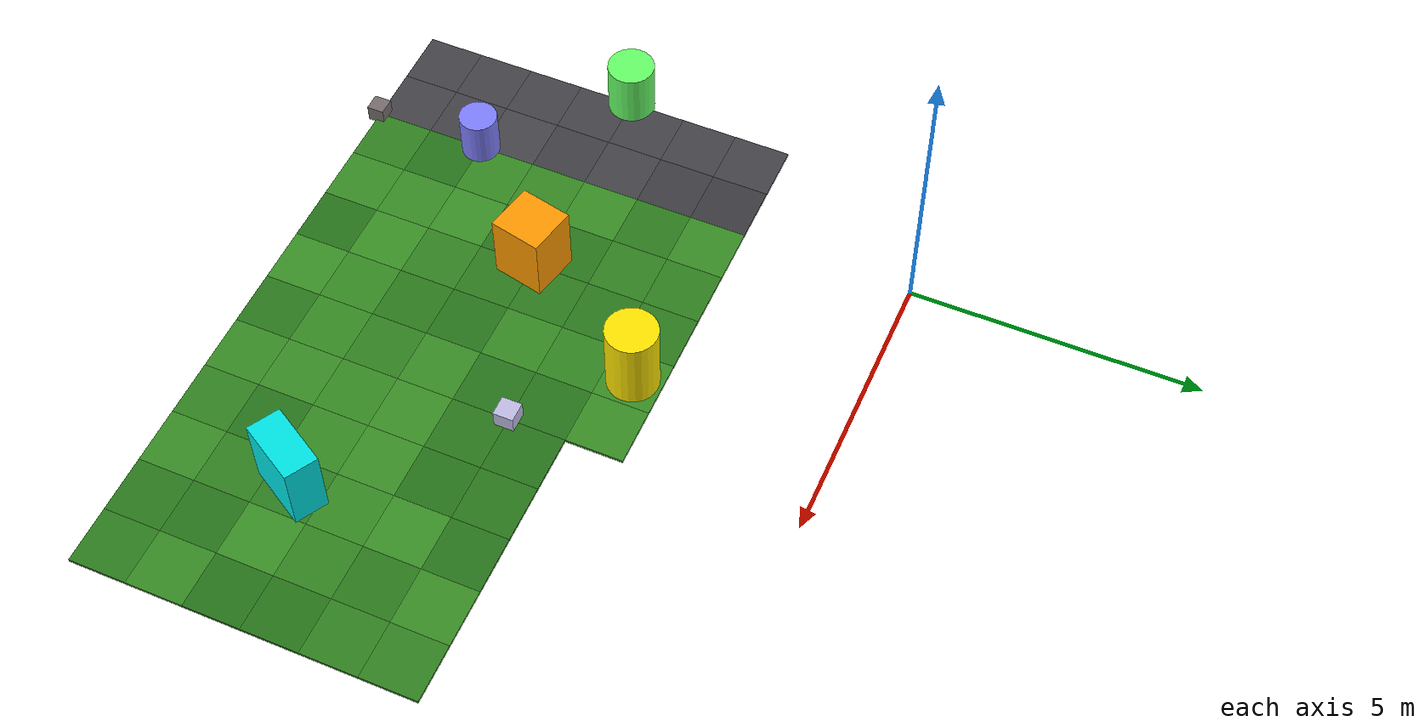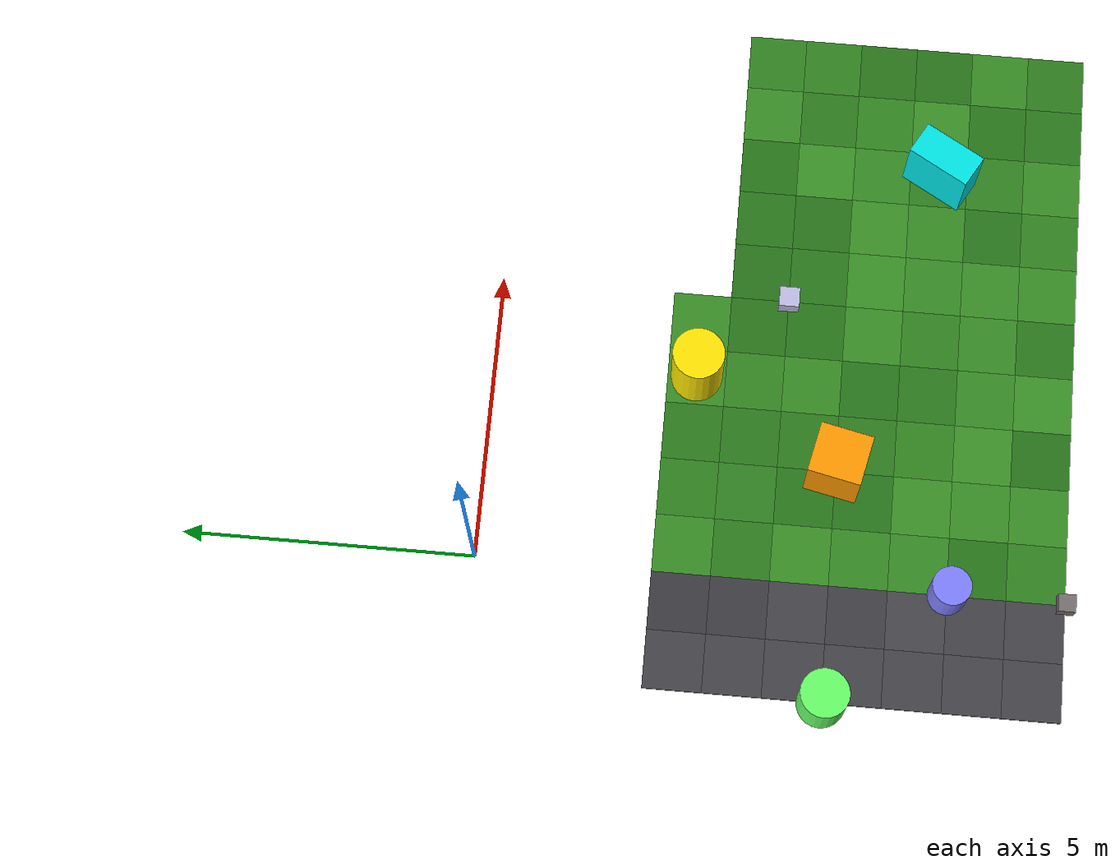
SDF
<sdf version="1.9">
 <world name="competition_world">
  <model name="t_00_08">
   <static>true</static>
   <pose>-1.500 -9.500 0.025 0 0 0</pose>
   <link name="link">
    <collision name="c"><geometry><box><size>1.00 1.00 0.05</size></box></geometry></collision>
    <visual name="v">
     <geometry><box><size>1.00 1.00 0.05</size></box></geometry>
     <material>
      <ambient>0.260 0.260 0.280 1</ambient>
      <diffuse>0.260 0.260 0.280 1</diffuse>
      <specular>0.060 0.060 0.060 1</specular>
     </material>
    </visual>
   </link>
  </model>
  <model name="t_00_09">
   <static>true</static>
   <pose>-0.500 -9.500 0.025 0 0 0</pose>
   <link name="link">
    <collision name="c"><geometry><box><size>1.00 1.00 0.05</size></box></geometry></collision>
    <visual name="v">
     <geometry><box><size>1.00 1.00 0.05</size></box></geometry>
     <material>
      <ambient>0.260 0.260 0.280 1</ambient>
      <diffuse>0.260 0.260 0.280 1</diffuse>
      <specular>0.060 0.060 0.060 1</specular>
     </material>
    </visual>
   </link>
  </model>
  <model name="t_00_10">
   <static>true</static>
   <pose>0.500 -9.500 0.025 0 0 0</pose>
   <link name="link">
    <collision name="c"><geometry><box><size>1.00 1.00 0.05</size></box></geometry></collision>
    <visual name="v">
     <geometry><box><size>1.00 1.00 0.05</size></box></geometry>
     <material>
      <ambient>0.190 0.510 0.125 1</ambient>
      <diffuse>0.190 0.510 0.125 1</diffuse>
      <specular>0.060 0.060 0.060 1</specular>
     </material>
    </visual>
   </link>
  </model>
  <model name="t_00_11">
   <static>true</static>
   <pose>1.500 -9.500 0.025 0 0 0</pose>
   <link name="link">
    <collision name="c"><geometry><box><size>1.00 1.00 0.05</size></box></geometry></collision>
    <visual name="v">
     <geometry><box><size>1.00 1.00 0.05</size></box></geometry>
     <material>
      <ambient>0.218 0.552 0.143 1</ambient>
      <diffuse>0.218 0.552 0.143 1</diffuse>
      <specular>0.060 0.060 0.060 1</specular>
     </material>
    </visual>
   </link>
  </model>
  <model name="t_00_12">
   <static>true</static>
   <pose>2.500 -9.500 0.025 0 0 0</pose>
   <link name="link">
    <collision name="c"><geometry><box><size>1.00 1.00 0.05</size></box></geometry></collision>
    <visual name="v">
     <geometry><box><size>1.00 1.00 0.05</size></box></geometry>
     <material>
      <ambient>0.152 0.453 0.101 1</ambient>
      <diffuse>0.152 0.453 0.101 1</diffuse>
      <specular>0.060 0.060 0.060 1</specular>
     </material>
    </visual>
   </link>
  </model>
  <model name="t_00_13">
   <static>true</static>
   <pose>3.500 -9.500 0.025 0 0 0</pose>
   <link name="link">
    <collision name="c"><geometry><box><size>1.00 1.00 0.05</size></box></geometry></collision>
    <visual name="v">
     <geometry><box><size>1.00 1.00 0.05</size></box></geometry>
     <material>
      <ambient>0.227 0.565 0.148 1</ambient>
      <diffuse>0.227 0.565 0.148 1</diffuse>
      <specular>0.060 0.060 0.060 1</specular>
     </material>
    </visual>
   </link>
  </model>
  <model name="t_00_14">
   <static>true</static>
   <pose>4.500 -9.500 0.025 0 0 0</pose>
   <link name="link">
    <collision name="c"><geometry><box><size>1.00 1.00 0.05</size></box></geometry></collision>
    <visual name="v">
     <geometry><box><size>1.00 1.00 0.05</size></box></geometry>
     <material>
      <ambient>0.164 0.471 0.109 1</ambient>
      <diffuse>0.164 0.471 0.109 1</diffuse>
      <specular>0.060 0.060 0.060 1</specular>
     </material>
    </visual>
   </link>
  </model>
  <model name="t_00_15">
   <static>true</static>
   <pose>5.500 -9.500 0.025 0 0 0</pose>
   <link name="link">
    <collision name="c"><geometry><box><size>1.00 1.00 0.05</size></box></geometry></collision>
    <visual name="v">
     <geometry><box><size>1.00 1.00 0.05</size></box></geometry>
     <material>
      <ambient>0.215 0.548 0.141 1</ambient>
      <diffuse>0.215 0.548 0.141 1</diffuse>
      <specular>0.060 0.060 0.060 1</specular>
     </material>
    </visual>
   </link>
  </model>
  <model name="t_00_16">
   <static>true</static>
   <pose>6.500 -9.500 0.025 0 0 0</pose>
   <link name="link">
    <collision name="c"><geometry><box><size>1.00 1.00 0.05</size></box></geometry></collision>
    <visual name="v">
     <geometry><box><size>1.00 1.00 0.05</size></box></geometry>
     <material>
      <ambient>0.191 0.511 0.125 1</ambient>
      <diffuse>0.191 0.511 0.125 1</diffuse>
      <specular>0.060 0.060 0.060 1</specular>
     </material>
    </visual>
   </link>
  </model>
  <model name="t_00_17">
   <static>true</static>
   <pose>7.500 -9.500 0.025 0 0 0</pose>
   <link name="link">
    <collision name="c"><geometry><box><size>1.00 1.00 0.05</size></box></geometry></collision>
    <visual name="v">
     <geometry><box><size>1.00 1.00 0.05</size></box></geometry>
     <material>
      <ambient>0.217 0.550 0.142 1</ambient>
      <diffuse>0.217 0.550 0.142 1</diffuse>
      <specular>0.060 0.060 0.060 1</specular>
     </material>
    </visual>
   </link>
  </model>
  <model name="t_00_18">
   <static>true</static>
   <pose>8.500 -9.500 0.025 0 0 0</pose>
   <link name="link">
    <collision name="c"><geometry><box><size>1.00 1.00 0.05</size></box></geometry></collision>
    <visual name="v">
     <geometry><box><size>1.00 1.00 0.05</size></box></geometry>
     <material>
      <ambient>0.165 0.472 0.109 1</ambient>
      <diffuse>0.165 0.472 0.109 1</diffuse>
      <specular>0.060 0.060 0.060 1</specular>
     </material>
    </visual>
   </link>
  </model>
  <model name="t_00_19">
   <static>true</static>
   <pose>9.500 -9.500 0.025 0 0 0</pose>
   <link name="link">
    <collision name="c"><geometry><box><size>1.00 1.00 0.05</size></box></geometry></collision>
    <visual name="v">
     <geometry><box><size>1.00 1.00 0.05</size></box></geometry>
     <material>
      <ambient>0.176 0.489 0.116 1</ambient>
      <diffuse>0.176 0.489 0.116 1</diffuse>
      <specular>0.060 0.060 0.060 1</specular>
     </material>
    </visual>
   </link>
  </model>
  <model name="t_01_08">
   <static>true</static>
   <pose>-1.500 -8.500 0.025 0 0 0</pose>
   <link name="link">
    <collision name="c"><geometry><box><size>1.00 1.00 0.05</size></box></geometry></collision>
    <visual name="v">
     <geometry><box><size>1.00 1.00 0.05</size></box></geometry>
     <material>
      <ambient>0.260 0.260 0.280 1</ambient>
      <diffuse>0.260 0.260 0.280 1</diffuse>
      <specular>0.060 0.060 0.060 1</specular>
     </material>
    </visual>
   </link>
  </model>
  <model name="t_01_09">
   <static>true</static>
   <pose>-0.500 -8.500 0.025 0 0 0</pose>
   <link name="link">
    <collision name="c"><geometry><box><size>1.00 1.00 0.05</size></box></geometry></collision>
    <visual name="v">
     <geometry><box><size>1.00 1.00 0.05</size></box></geometry>
     <material>
      <ambient>0.255 0.255 0.275 1</ambient>
      <diffuse>0.255 0.255 0.275 1</diffuse>
      <specular>0.060 0.060 0.060 1</specular>
     </material>
    </visual>
   </link>
  </model>
  <model name="t_01_10">
   <static>true</static>
   <pose>0.500 -8.500 0.025 0 0 0</pose>
   <link name="link">
    <collision name="c"><geometry><box><size>1.00 1.00 0.05</size></box></geometry></collision>
    <visual name="v">
     <geometry><box><size>1.00 1.00 0.05</size></box></geometry>
     <material>
      <ambient>0.156 0.459 0.104 1</ambient>
      <diffuse>0.156 0.459 0.104 1</diffuse>
      <specular>0.060 0.060 0.060 1</specular>
     </material>
    </visual>
   </link>
  </model>
  <model name="t_01_11">
   <static>true</static>
   <pose>1.500 -8.500 0.025 0 0 0</pose>
   <link name="link">
    <collision name="c"><geometry><box><size>1.00 1.00 0.05</size></box></geometry></collision>
    <visual name="v">
     <geometry><box><size>1.00 1.00 0.05</size></box></geometry>
     <material>
      <ambient>0.217 0.551 0.142 1</ambient>
      <diffuse>0.217 0.551 0.142 1</diffuse>
      <specular>0.060 0.060 0.060 1</specular>
     </material>
    </visual>
   </link>
  </model>
  <model name="t_01_12">
   <static>true</static>
   <pose>2.500 -8.500 0.025 0 0 0</pose>
   <link name="link">
    <collision name="c"><geometry><box><size>1.00 1.00 0.05</size></box></geometry></collision>
    <visual name="v">
     <geometry><box><size>1.00 1.00 0.05</size></box></geometry>
     <material>
      <ambient>0.229 0.568 0.149 1</ambient>
      <diffuse>0.229 0.568 0.149 1</diffuse>
      <specular>0.060 0.060 0.060 1</specular>
     </material>
    </visual>
   </link>
  </model>
  <model name="t_01_13">
   <static>true</static>
   <pose>3.500 -8.500 0.025 0 0 0</pose>
   <link name="link">
    <collision name="c"><geometry><box><size>1.00 1.00 0.05</size></box></geometry></collision>
    <visual name="v">
     <geometry><box><size>1.00 1.00 0.05</size></box></geometry>
     <material>
      <ambient>0.209 0.539 0.137 1</ambient>
      <diffuse>0.209 0.539 0.137 1</diffuse>
      <specular>0.060 0.060 0.060 1</specular>
     </material>
    </visual>
   </link>
  </model>
  <model name="t_01_14">
   <static>true</static>
   <pose>4.500 -8.500 0.025 0 0 0</pose>
   <link name="link">
    <collision name="c"><geometry><box><size>1.00 1.00 0.05</size></box></geometry></collision>
    <visual name="v">
     <geometry><box><size>1.00 1.00 0.05</size></box></geometry>
     <material>
      <ambient>0.209 0.539 0.137 1</ambient>
      <diffuse>0.209 0.539 0.137 1</diffuse>
      <specular>0.060 0.060 0.060 1</specular>
     </material>
    </visual>
   </link>
  </model>
  <model name="t_01_15">
   <static>true</static>
   <pose>5.500 -8.500 0.025 0 0 0</pose>
   <link name="link">
    <collision name="c"><geometry><box><size>1.00 1.00 0.05</size></box></geometry></collision>
    <visual name="v">
     <geometry><box><size>1.00 1.00 0.05</size></box></geometry>
     <material>
      <ambient>0.218 0.552 0.142 1</ambient>
      <diffuse>0.218 0.552 0.142 1</diffuse>
      <specular>0.060 0.060 0.060 1</specular>
     </material>
    </visual>
   </link>
  </model>
  <model name="t_01_16">
   <static>true</static>
   <pose>6.500 -8.500 0.025 0 0 0</pose>
   <link name="link">
    <collision name="c"><geometry><box><size>1.00 1.00 0.05</size></box></geometry></collision>
    <visual name="v">
     <geometry><box><size>1.00 1.00 0.05</size></box></geometry>
     <material>
      <ambient>0.158 0.461 0.105 1</ambient>
      <diffuse>0.158 0.461 0.105 1</diffuse>
      <specular>0.060 0.060 0.060 1</specular>
     </material>
    </visual>
   </link>
  </model>
  <model name="t_01_17">
   <static>true</static>
   <pose>7.500 -8.500 0.025 0 0 0</pose>
   <link name="link">
    <collision name="c"><geometry><box><size>1.00 1.00 0.05</size></box></geometry></collision>
    <visual name="v">
     <geometry><box><size>1.00 1.00 0.05</size></box></geometry>
     <material>
      <ambient>0.187 0.505 0.123 1</ambient>
      <diffuse>0.187 0.505 0.123 1</diffuse>
      <specular>0.060 0.060 0.060 1</specular>
     </material>
    </visual>
   </link>
  </model>
  <model name="t_01_18">
   <static>true</static>
   <pose>8.500 -8.500 0.025 0 0 0</pose>
   <link name="link">
    <collision name="c"><geometry><box><size>1.00 1.00 0.05</size></box></geometry></collision>
    <visual name="v">
     <geometry><box><size>1.00 1.00 0.05</size></box></geometry>
     <material>
      <ambient>0.156 0.460 0.104 1</ambient>
      <diffuse>0.156 0.460 0.104 1</diffuse>
      <specular>0.060 0.060 0.060 1</specular>
     </material>
    </visual>
   </link>
  </model>
  <model name="t_01_19">
   <static>true</static>
   <pose>9.500 -8.500 0.025 0 0 0</pose>
   <link name="link">
    <collision name="c"><geometry><box><size>1.00 1.00 0.05</size></box></geometry></collision>
    <visual name="v">
     <geometry><box><size>1.00 1.00 0.05</size></box></geometry>
     <material>
      <ambient>0.213 0.544 0.139 1</ambient>
      <diffuse>0.213 0.544 0.139 1</diffuse>
      <specular>0.060 0.060 0.060 1</specular>
     </material>
    </visual>
   </link>
  </model>
  <model name="t_02_08">
   <static>true</static>
   <pose>-1.500 -7.500 0.025 0 0 0</pose>
   <link name="link">
    <collision name="c"><geometry><box><size>1.00 1.00 0.05</size></box></geometry></collision>
    <visual name="v">
     <geometry><box><size>1.00 1.00 0.05</size></box></geometry>
     <material>
      <ambient>0.260 0.260 0.280 1</ambient>
      <diffuse>0.260 0.260 0.280 1</diffuse>
      <specular>0.060 0.060 0.060 1</specular>
     </material>
    </visual>
   </link>
  </model>
  <model name="t_02_09">
   <static>true</static>
   <pose>-0.500 -7.500 0.025 0 0 0</pose>
   <link name="link">
    <collision name="c"><geometry><box><size>1.00 1.00 0.05</size></box></geometry></collision>
    <visual name="v">
     <geometry><box><size>1.00 1.00 0.05</size></box></geometry>
     <material>
      <ambient>0.269 0.269 0.289 1</ambient>
      <diffuse>0.269 0.269 0.289 1</diffuse>
      <specular>0.060 0.060 0.060 1</specular>
     </material>
    </visual>
   </link>
  </model>
  <model name="t_02_10">
   <static>true</static>
   <pose>0.500 -7.500 0.025 0 0 0</pose>
   <link name="link">
    <collision name="c"><geometry><box><size>1.00 1.00 0.05</size></box></geometry></collision>
    <visual name="v">
     <geometry><box><size>1.00 1.00 0.05</size></box></geometry>
     <material>
      <ambient>0.210 0.540 0.138 1</ambient>
      <diffuse>0.210 0.540 0.138 1</diffuse>
      <specular>0.060 0.060 0.060 1</specular>
     </material>
    </visual>
   </link>
  </model>
  <model name="t_02_11">
   <static>true</static>
   <pose>1.500 -7.500 0.025 0 0 0</pose>
   <link name="link">
    <collision name="c"><geometry><box><size>1.00 1.00 0.05</size></box></geometry></collision>
    <visual name="v">
     <geometry><box><size>1.00 1.00 0.05</size></box></geometry>
     <material>
      <ambient>0.226 0.564 0.147 1</ambient>
      <diffuse>0.226 0.564 0.147 1</diffuse>
      <specular>0.060 0.060 0.060 1</specular>
     </material>
    </visual>
   </link>
  </model>
  <model name="t_02_12">
   <static>true</static>
   <pose>2.500 -7.500 0.025 0 0 0</pose>
   <link name="link">
    <collision name="c"><geometry><box><size>1.00 1.00 0.05</size></box></geometry></collision>
    <visual name="v">
     <geometry><box><size>1.00 1.00 0.05</size></box></geometry>
     <material>
      <ambient>0.192 0.514 0.127 1</ambient>
      <diffuse>0.192 0.514 0.127 1</diffuse>
      <specular>0.060 0.060 0.060 1</specular>
     </material>
    </visual>
   </link>
  </model>
  <model name="t_02_13">
   <static>true</static>
   <pose>3.500 -7.500 0.025 0 0 0</pose>
   <link name="link">
    <collision name="c"><geometry><box><size>1.00 1.00 0.05</size></box></geometry></collision>
    <visual name="v">
     <geometry><box><size>1.00 1.00 0.05</size></box></geometry>
     <material>
      <ambient>0.168 0.476 0.111 1</ambient>
      <diffuse>0.168 0.476 0.111 1</diffuse>
      <specular>0.060 0.060 0.060 1</specular>
     </material>
    </visual>
   </link>
  </model>
  <model name="t_02_14">
   <static>true</static>
   <pose>4.500 -7.500 0.025 0 0 0</pose>
   <link name="link">
    <collision name="c"><geometry><box><size>1.00 1.00 0.05</size></box></geometry></collision>
    <visual name="v">
     <geometry><box><size>1.00 1.00 0.05</size></box></geometry>
     <material>
      <ambient>0.188 0.507 0.124 1</ambient>
      <diffuse>0.188 0.507 0.124 1</diffuse>
      <specular>0.060 0.060 0.060 1</specular>
     </material>
    </visual>
   </link>
  </model>
  <model name="t_02_15">
   <static>true</static>
   <pose>5.500 -7.500 0.025 0 0 0</pose>
   <link name="link">
    <collision name="c"><geometry><box><size>1.00 1.00 0.05</size></box></geometry></collision>
    <visual name="v">
     <geometry><box><size>1.00 1.00 0.05</size></box></geometry>
     <material>
      <ambient>0.209 0.539 0.137 1</ambient>
      <diffuse>0.209 0.539 0.137 1</diffuse>
      <specular>0.060 0.060 0.060 1</specular>
     </material>
    </visual>
   </link>
  </model>
  <model name="t_02_16">
   <static>true</static>
   <pose>6.500 -7.500 0.025 0 0 0</pose>
   <link name="link">
    <collision name="c"><geometry><box><size>1.00 1.00 0.05</size></box></geometry></collision>
    <visual name="v">
     <geometry><box><size>1.00 1.00 0.05</size></box></geometry>
     <material>
      <ambient>0.211 0.542 0.138 1</ambient>
      <diffuse>0.211 0.542 0.138 1</diffuse>
      <specular>0.060 0.060 0.060 1</specular>
     </material>
    </visual>
   </link>
  </model>
  <model name="t_02_17">
   <static>true</static>
   <pose>7.500 -7.500 0.025 0 0 0</pose>
   <link name="link">
    <collision name="c"><geometry><box><size>1.00 1.00 0.05</size></box></geometry></collision>
    <visual name="v">
     <geometry><box><size>1.00 1.00 0.05</size></box></geometry>
     <material>
      <ambient>0.181 0.496 0.119 1</ambient>
      <diffuse>0.181 0.496 0.119 1</diffuse>
      <specular>0.060 0.060 0.060 1</specular>
     </material>
    </visual>
   </link>
  </model>
  <model name="t_02_18">
   <static>true</static>
   <pose>8.500 -7.500 0.025 0 0 0</pose>
   <link name="link">
    <collision name="c"><geometry><box><size>1.00 1.00 0.05</size></box></geometry></collision>
    <visual name="v">
     <geometry><box><size>1.00 1.00 0.05</size></box></geometry>
     <material>
      <ambient>0.226 0.564 0.147 1</ambient>
      <diffuse>0.226 0.564 0.147 1</diffuse>
      <specular>0.060 0.060 0.060 1</specular>
     </material>
    </visual>
   </link>
  </model>
  <model name="t_02_19">
   <static>true</static>
   <pose>9.500 -7.500 0.025 0 0 0</pose>
   <link name="link">
    <collision name="c"><geometry><box><size>1.00 1.00 0.05</size></box></geometry></collision>
    <visual name="v">
     <geometry><box><size>1.00 1.00 0.05</size></box></geometry>
     <material>
      <ambient>0.153 0.454 0.102 1</ambient>
      <diffuse>0.153 0.454 0.102 1</diffuse>
      <specular>0.060 0.060 0.060 1</specular>
     </material>
    </visual>
   </link>
  </model>
  <model name="t_03_08">
   <static>true</static>
   <pose>-1.500 -6.500 0.025 0 0 0</pose>
   <link name="link">
    <collision name="c"><geometry><box><size>1.00 1.00 0.05</size></box></geometry></collision>
    <visual name="v">
     <geometry><box><size>1.00 1.00 0.05</size></box></geometry>
     <material>
      <ambient>0.260 0.260 0.280 1</ambient>
      <diffuse>0.260 0.260 0.280 1</diffuse>
      <specular>0.060 0.060 0.060 1</specular>
     </material>
    </visual>
   </link>
  </model>
  <model name="t_03_09">
   <static>true</static>
   <pose>-0.500 -6.500 0.025 0 0 0</pose>
   <link name="link">
    <collision name="c"><geometry><box><size>1.00 1.00 0.05</size></box></geometry></collision>
    <visual name="v">
     <geometry><box><size>1.00 1.00 0.05</size></box></geometry>
     <material>
      <ambient>0.244 0.244 0.264 1</ambient>
      <diffuse>0.244 0.244 0.264 1</diffuse>
      <specular>0.060 0.060 0.060 1</specular>
     </material>
    </visual>
   </link>
  </model>
  <model name="t_03_10">
   <static>true</static>
   <pose>0.500 -6.500 0.025 0 0 0</pose>
   <link name="link">
    <collision name="c"><geometry><box><size>1.00 1.00 0.05</size></box></geometry></collision>
    <visual name="v">
     <geometry><box><size>1.00 1.00 0.05</size></box></geometry>
     <material>
      <ambient>0.205 0.533 0.135 1</ambient>
      <diffuse>0.205 0.533 0.135 1</diffuse>
      <specular>0.060 0.060 0.060 1</specular>
     </material>
    </visual>
   </link>
  </model>
  <model name="t_03_11">
   <static>true</static>
   <pose>1.500 -6.500 0.025 0 0 0</pose>
   <link name="link">
    <collision name="c"><geometry><box><size>1.00 1.00 0.05</size></box></geometry></collision>
    <visual name="v">
     <geometry><box><size>1.00 1.00 0.05</size></box></geometry>
     <material>
      <ambient>0.158 0.461 0.105 1</ambient>
      <diffuse>0.158 0.461 0.105 1</diffuse>
      <specular>0.060 0.060 0.060 1</specular>
     </material>
    </visual>
   </link>
  </model>
  <model name="t_03_12">
   <static>true</static>
   <pose>2.500 -6.500 0.025 0 0 0</pose>
   <link name="link">
    <collision name="c"><geometry><box><size>1.00 1.00 0.05</size></box></geometry></collision>
    <visual name="v">
     <geometry><box><size>1.00 1.00 0.05</size></box></geometry>
     <material>
      <ambient>0.174 0.486 0.115 1</ambient>
      <diffuse>0.174 0.486 0.115 1</diffuse>
      <specular>0.060 0.060 0.060 1</specular>
     </material>
    </visual>
   </link>
  </model>
  <model name="t_03_13">
   <static>true</static>
   <pose>3.500 -6.500 0.025 0 0 0</pose>
   <link name="link">
    <collision name="c"><geometry><box><size>1.00 1.00 0.05</size></box></geometry></collision>
    <visual name="v">
     <geometry><box><size>1.00 1.00 0.05</size></box></geometry>
     <material>
      <ambient>0.157 0.461 0.105 1</ambient>
      <diffuse>0.157 0.461 0.105 1</diffuse>
      <specular>0.060 0.060 0.060 1</specular>
     </material>
    </visual>
   </link>
  </model>
  <model name="t_03_14">
   <static>true</static>
   <pose>4.500 -6.500 0.025 0 0 0</pose>
   <link name="link">
    <collision name="c"><geometry><box><size>1.00 1.00 0.05</size></box></geometry></collision>
    <visual name="v">
     <geometry><box><size>1.00 1.00 0.05</size></box></geometry>
     <material>
      <ambient>0.217 0.551 0.142 1</ambient>
      <diffuse>0.217 0.551 0.142 1</diffuse>
      <specular>0.060 0.060 0.060 1</specular>
     </material>
    </visual>
   </link>
  </model>
  <model name="t_03_15">
   <static>true</static>
   <pose>5.500 -6.500 0.025 0 0 0</pose>
   <link name="link">
    <collision name="c"><geometry><box><size>1.00 1.00 0.05</size></box></geometry></collision>
    <visual name="v">
     <geometry><box><size>1.00 1.00 0.05</size></box></geometry>
     <material>
      <ambient>0.223 0.560 0.146 1</ambient>
      <diffuse>0.223 0.560 0.146 1</diffuse>
      <specular>0.060 0.060 0.060 1</specular>
     </material>
    </visual>
   </link>
  </model>
  <model name="t_03_16">
   <static>true</static>
   <pose>6.500 -6.500 0.025 0 0 0</pose>
   <link name="link">
    <collision name="c"><geometry><box><size>1.00 1.00 0.05</size></box></geometry></collision>
    <visual name="v">
     <geometry><box><size>1.00 1.00 0.05</size></box></geometry>
     <material>
      <ambient>0.224 0.561 0.146 1</ambient>
      <diffuse>0.224 0.561 0.146 1</diffuse>
      <specular>0.060 0.060 0.060 1</specular>
     </material>
    </visual>
   </link>
  </model>
  <model name="t_03_17">
   <static>true</static>
   <pose>7.500 -6.500 0.025 0 0 0</pose>
   <link name="link">
    <collision name="c"><geometry><box><size>1.00 1.00 0.05</size></box></geometry></collision>
    <visual name="v">
     <geometry><box><size>1.00 1.00 0.05</size></box></geometry>
     <material>
      <ambient>0.210 0.540 0.138 1</ambient>
      <diffuse>0.210 0.540 0.138 1</diffuse>
      <specular>0.060 0.060 0.060 1</specular>
     </material>
    </visual>
   </link>
  </model>
  <model name="t_03_18">
   <static>true</static>
   <pose>8.500 -6.500 0.025 0 0 0</pose>
   <link name="link">
    <collision name="c"><geometry><box><size>1.00 1.00 0.05</size></box></geometry></collision>
    <visual name="v">
     <geometry><box><size>1.00 1.00 0.05</size></box></geometry>
     <material>
      <ambient>0.196 0.519 0.129 1</ambient>
      <diffuse>0.196 0.519 0.129 1</diffuse>
      <specular>0.060 0.060 0.060 1</specular>
     </material>
    </visual>
   </link>
  </model>
  <model name="t_03_19">
   <static>true</static>
   <pose>9.500 -6.500 0.025 0 0 0</pose>
   <link name="link">
    <collision name="c"><geometry><box><size>1.00 1.00 0.05</size></box></geometry></collision>
    <visual name="v">
     <geometry><box><size>1.00 1.00 0.05</size></box></geometry>
     <material>
      <ambient>0.155 0.457 0.103 1</ambient>
      <diffuse>0.155 0.457 0.103 1</diffuse>
      <specular>0.060 0.060 0.060 1</specular>
     </material>
    </visual>
   </link>
  </model>
  <model name="t_04_08">
   <static>true</static>
   <pose>-1.500 -5.500 0.025 0 0 0</pose>
   <link name="link">
    <collision name="c"><geometry><box><size>1.00 1.00 0.05</size></box></geometry></collision>
    <visual name="v">
     <geometry><box><size>1.00 1.00 0.05</size></box></geometry>
     <material>
      <ambient>0.260 0.260 0.280 1</ambient>
      <diffuse>0.260 0.260 0.280 1</diffuse>
      <specular>0.060 0.060 0.060 1</specular>
     </material>
    </visual>
   </link>
  </model>
  <model name="t_04_09">
   <static>true</static>
   <pose>-0.500 -5.500 0.025 0 0 0</pose>
   <link name="link">
    <collision name="c"><geometry><box><size>1.00 1.00 0.05</size></box></geometry></collision>
    <visual name="v">
     <geometry><box><size>1.00 1.00 0.05</size></box></geometry>
     <material>
      <ambient>0.260 0.260 0.280 1</ambient>
      <diffuse>0.260 0.260 0.280 1</diffuse>
      <specular>0.060 0.060 0.060 1</specular>
     </material>
    </visual>
   </link>
  </model>
  <model name="t_04_10">
   <static>true</static>
   <pose>0.500 -5.500 0.025 0 0 0</pose>
   <link name="link">
    <collision name="c"><geometry><box><size>1.00 1.00 0.05</size></box></geometry></collision>
    <visual name="v">
     <geometry><box><size>1.00 1.00 0.05</size></box></geometry>
     <material>
      <ambient>0.221 0.556 0.144 1</ambient>
      <diffuse>0.221 0.556 0.144 1</diffuse>
      <specular>0.060 0.060 0.060 1</specular>
     </material>
    </visual>
   </link>
  </model>
  <model name="t_04_11">
   <static>true</static>
   <pose>1.500 -5.500 0.025 0 0 0</pose>
   <link name="link">
    <collision name="c"><geometry><box><size>1.00 1.00 0.05</size></box></geometry></collision>
    <visual name="v">
     <geometry><box><size>1.00 1.00 0.05</size></box></geometry>
     <material>
      <ambient>0.161 0.466 0.107 1</ambient>
      <diffuse>0.161 0.466 0.107 1</diffuse>
      <specular>0.060 0.060 0.060 1</specular>
     </material>
    </visual>
   </link>
  </model>
  <model name="t_04_12">
   <static>true</static>
   <pose>2.500 -5.500 0.025 0 0 0</pose>
   <link name="link">
    <collision name="c"><geometry><box><size>1.00 1.00 0.05</size></box></geometry></collision>
    <visual name="v">
     <geometry><box><size>1.00 1.00 0.05</size></box></geometry>
     <material>
      <ambient>0.171 0.481 0.113 1</ambient>
      <diffuse>0.171 0.481 0.113 1</diffuse>
      <specular>0.060 0.060 0.060 1</specular>
     </material>
    </visual>
   </link>
  </model>
  <model name="t_04_13">
   <static>true</static>
   <pose>3.500 -5.500 0.025 0 0 0</pose>
   <link name="link">
    <collision name="c"><geometry><box><size>1.00 1.00 0.05</size></box></geometry></collision>
    <visual name="v">
     <geometry><box><size>1.00 1.00 0.05</size></box></geometry>
     <material>
      <ambient>0.212 0.543 0.139 1</ambient>
      <diffuse>0.212 0.543 0.139 1</diffuse>
      <specular>0.060 0.060 0.060 1</specular>
     </material>
    </visual>
   </link>
  </model>
  <model name="t_04_14">
   <static>true</static>
   <pose>4.500 -5.500 0.025 0 0 0</pose>
   <link name="link">
    <collision name="c"><geometry><box><size>1.00 1.00 0.05</size></box></geometry></collision>
    <visual name="v">
     <geometry><box><size>1.00 1.00 0.05</size></box></geometry>
     <material>
      <ambient>0.157 0.460 0.104 1</ambient>
      <diffuse>0.157 0.460 0.104 1</diffuse>
      <specular>0.060 0.060 0.060 1</specular>
     </material>
    </visual>
   </link>
  </model>
  <model name="t_04_15">
   <static>true</static>
   <pose>5.500 -5.500 0.025 0 0 0</pose>
   <link name="link">
    <collision name="c"><geometry><box><size>1.00 1.00 0.05</size></box></geometry></collision>
    <visual name="v">
     <geometry><box><size>1.00 1.00 0.05</size></box></geometry>
     <material>
      <ambient>0.163 0.470 0.108 1</ambient>
      <diffuse>0.163 0.470 0.108 1</diffuse>
      <specular>0.060 0.060 0.060 1</specular>
     </material>
    </visual>
   </link>
  </model>
  <model name="t_04_16">
   <static>true</static>
   <pose>6.500 -5.500 0.025 0 0 0</pose>
   <link name="link">
    <collision name="c"><geometry><box><size>1.00 1.00 0.05</size></box></geometry></collision>
    <visual name="v">
     <geometry><box><size>1.00 1.00 0.05</size></box></geometry>
     <material>
      <ambient>0.152 0.453 0.101 1</ambient>
      <diffuse>0.152 0.453 0.101 1</diffuse>
      <specular>0.060 0.060 0.060 1</specular>
     </material>
    </visual>
   </link>
  </model>
  <model name="t_04_17">
   <static>true</static>
   <pose>7.500 -5.500 0.025 0 0 0</pose>
   <link name="link">
    <collision name="c"><geometry><box><size>1.00 1.00 0.05</size></box></geometry></collision>
    <visual name="v">
     <geometry><box><size>1.00 1.00 0.05</size></box></geometry>
     <material>
      <ambient>0.227 0.565 0.148 1</ambient>
      <diffuse>0.227 0.565 0.148 1</diffuse>
      <specular>0.060 0.060 0.060 1</specular>
     </material>
    </visual>
   </link>
  </model>
  <model name="t_04_18">
   <static>true</static>
   <pose>8.500 -5.500 0.025 0 0 0</pose>
   <link name="link">
    <collision name="c"><geometry><box><size>1.00 1.00 0.05</size></box></geometry></collision>
    <visual name="v">
     <geometry><box><size>1.00 1.00 0.05</size></box></geometry>
     <material>
      <ambient>0.169 0.478 0.112 1</ambient>
      <diffuse>0.169 0.478 0.112 1</diffuse>
      <specular>0.060 0.060 0.060 1</specular>
     </material>
    </visual>
   </link>
  </model>
  <model name="t_04_19">
   <static>true</static>
   <pose>9.500 -5.500 0.025 0 0 0</pose>
   <link name="link">
    <collision name="c"><geometry><box><size>1.00 1.00 0.05</size></box></geometry></collision>
    <visual name="v">
     <geometry><box><size>1.00 1.00 0.05</size></box></geometry>
     <material>
      <ambient>0.190 0.510 0.125 1</ambient>
      <diffuse>0.190 0.510 0.125 1</diffuse>
      <specular>0.060 0.060 0.060 1</specular>
     </material>
    </visual>
   </link>
  </model>
  <model name="t_05_08">
   <static>true</static>
   <pose>-1.500 -4.500 0.025 0 0 0</pose>
   <link name="link">
    <collision name="c"><geometry><box><size>1.00 1.00 0.05</size></box></geometry></collision>
    <visual name="v">
     <geometry><box><size>1.00 1.00 0.05</size></box></geometry>
     <material>
      <ambient>0.260 0.260 0.280 1</ambient>
      <diffuse>0.260 0.260 0.280 1</diffuse>
      <specular>0.060 0.060 0.060 1</specular>
     </material>
    </visual>
   </link>
  </model>
  <model name="t_05_09">
   <static>true</static>
   <pose>-0.500 -4.500 0.025 0 0 0</pose>
   <link name="link">
    <collision name="c"><geometry><box><size>1.00 1.00 0.05</size></box></geometry></collision>
    <visual name="v">
     <geometry><box><size>1.00 1.00 0.05</size></box></geometry>
     <material>
      <ambient>0.235 0.235 0.255 1</ambient>
      <diffuse>0.235 0.235 0.255 1</diffuse>
      <specular>0.060 0.060 0.060 1</specular>
     </material>
    </visual>
   </link>
  </model>
  <model name="t_05_10">
   <static>true</static>
   <pose>0.500 -4.500 0.025 0 0 0</pose>
   <link name="link">
    <collision name="c"><geometry><box><size>1.00 1.00 0.05</size></box></geometry></collision>
    <visual name="v">
     <geometry><box><size>1.00 1.00 0.05</size></box></geometry>
     <material>
      <ambient>0.172 0.483 0.114 1</ambient>
      <diffuse>0.172 0.483 0.114 1</diffuse>
      <specular>0.060 0.060 0.060 1</specular>
     </material>
    </visual>
   </link>
  </model>
  <model name="t_05_11">
   <static>true</static>
   <pose>1.500 -4.500 0.025 0 0 0</pose>
   <link name="link">
    <collision name="c"><geometry><box><size>1.00 1.00 0.05</size></box></geometry></collision>
    <visual name="v">
     <geometry><box><size>1.00 1.00 0.05</size></box></geometry>
     <material>
      <ambient>0.186 0.504 0.123 1</ambient>
      <diffuse>0.186 0.504 0.123 1</diffuse>
      <specular>0.060 0.060 0.060 1</specular>
     </material>
    </visual>
   </link>
  </model>
  <model name="t_05_12">
   <static>true</static>
   <pose>2.500 -4.500 0.025 0 0 0</pose>
   <link name="link">
    <collision name="c"><geometry><box><size>1.00 1.00 0.05</size></box></geometry></collision>
    <visual name="v">
     <geometry><box><size>1.00 1.00 0.05</size></box></geometry>
     <material>
      <ambient>0.165 0.473 0.109 1</ambient>
      <diffuse>0.165 0.473 0.109 1</diffuse>
      <specular>0.060 0.060 0.060 1</specular>
     </material>
    </visual>
   </link>
  </model>
  <model name="t_05_13">
   <static>true</static>
   <pose>3.500 -4.500 0.025 0 0 0</pose>
   <link name="link">
    <collision name="c"><geometry><box><size>1.00 1.00 0.05</size></box></geometry></collision>
    <visual name="v">
     <geometry><box><size>1.00 1.00 0.05</size></box></geometry>
     <material>
      <ambient>0.197 0.521 0.130 1</ambient>
      <diffuse>0.197 0.521 0.130 1</diffuse>
      <specular>0.060 0.060 0.060 1</specular>
     </material>
    </visual>
   </link>
  </model>
  <model name="t_05_14">
   <static>true</static>
   <pose>4.500 -4.500 0.025 0 0 0</pose>
   <link name="link">
    <collision name="c"><geometry><box><size>1.00 1.00 0.05</size></box></geometry></collision>
    <visual name="v">
     <geometry><box><size>1.00 1.00 0.05</size></box></geometry>
     <material>
      <ambient>0.156 0.458 0.104 1</ambient>
      <diffuse>0.156 0.458 0.104 1</diffuse>
      <specular>0.060 0.060 0.060 1</specular>
     </material>
    </visual>
   </link>
  </model>
  <model name="t_05_15">
   <static>true</static>
   <pose>5.500 -4.500 0.025 0 0 0</pose>
   <link name="link">
    <collision name="c"><geometry><box><size>1.00 1.00 0.05</size></box></geometry></collision>
    <visual name="v">
     <geometry><box><size>1.00 1.00 0.05</size></box></geometry>
     <material>
      <ambient>0.152 0.452 0.101 1</ambient>
      <diffuse>0.152 0.452 0.101 1</diffuse>
      <specular>0.060 0.060 0.060 1</specular>
     </material>
    </visual>
   </link>
  </model>
  <model name="t_05_16">
   <static>true</static>
   <pose>6.500 -4.500 0.025 0 0 0</pose>
   <link name="link">
    <collision name="c"><geometry><box><size>1.00 1.00 0.05</size></box></geometry></collision>
    <visual name="v">
     <geometry><box><size>1.00 1.00 0.05</size></box></geometry>
     <material>
      <ambient>0.161 0.467 0.107 1</ambient>
      <diffuse>0.161 0.467 0.107 1</diffuse>
      <specular>0.060 0.060 0.060 1</specular>
     </material>
    </visual>
   </link>
  </model>
  <model name="t_05_17">
   <static>true</static>
   <pose>7.500 -4.500 0.025 0 0 0</pose>
   <link name="link">
    <collision name="c"><geometry><box><size>1.00 1.00 0.05</size></box></geometry></collision>
    <visual name="v">
     <geometry><box><size>1.00 1.00 0.05</size></box></geometry>
     <material>
      <ambient>0.157 0.461 0.104 1</ambient>
      <diffuse>0.157 0.461 0.104 1</diffuse>
      <specular>0.060 0.060 0.060 1</specular>
     </material>
    </visual>
   </link>
  </model>
  <model name="t_05_18">
   <static>true</static>
   <pose>8.500 -4.500 0.025 0 0 0</pose>
   <link name="link">
    <collision name="c"><geometry><box><size>1.00 1.00 0.05</size></box></geometry></collision>
    <visual name="v">
     <geometry><box><size>1.00 1.00 0.05</size></box></geometry>
     <material>
      <ambient>0.220 0.555 0.144 1</ambient>
      <diffuse>0.220 0.555 0.144 1</diffuse>
      <specular>0.060 0.060 0.060 1</specular>
     </material>
    </visual>
   </link>
  </model>
  <model name="t_05_19">
   <static>true</static>
   <pose>9.500 -4.500 0.025 0 0 0</pose>
   <link name="link">
    <collision name="c"><geometry><box><size>1.00 1.00 0.05</size></box></geometry></collision>
    <visual name="v">
     <geometry><box><size>1.00 1.00 0.05</size></box></geometry>
     <material>
      <ambient>0.191 0.511 0.126 1</ambient>
      <diffuse>0.191 0.511 0.126 1</diffuse>
      <specular>0.060 0.060 0.060 1</specular>
     </material>
    </visual>
   </link>
  </model>
  <model name="t_06_08">
   <static>true</static>
   <pose>-1.500 -3.500 0.025 0 0 0</pose>
   <link name="link">
    <collision name="c"><geometry><box><size>1.00 1.00 0.05</size></box></geometry></collision>
    <visual name="v">
     <geometry><box><size>1.00 1.00 0.05</size></box></geometry>
     <material>
      <ambient>0.260 0.260 0.280 1</ambient>
      <diffuse>0.260 0.260 0.280 1</diffuse>
      <specular>0.060 0.060 0.060 1</specular>
     </material>
    </visual>
   </link>
  </model>
  <model name="t_06_09">
   <static>true</static>
   <pose>-0.500 -3.500 0.025 0 0 0</pose>
   <link name="link">
    <collision name="c"><geometry><box><size>1.00 1.00 0.05</size></box></geometry></collision>
    <visual name="v">
     <geometry><box><size>1.00 1.00 0.05</size></box></geometry>
     <material>
      <ambient>0.230 0.230 0.250 1</ambient>
      <diffuse>0.230 0.230 0.250 1</diffuse>
      <specular>0.060 0.060 0.060 1</specular>
     </material>
    </visual>
   </link>
  </model>
  <model name="t_06_10">
   <static>true</static>
   <pose>0.500 -3.500 0.025 0 0 0</pose>
   <link name="link">
    <collision name="c"><geometry><box><size>1.00 1.00 0.05</size></box></geometry></collision>
    <visual name="v">
     <geometry><box><size>1.00 1.00 0.05</size></box></geometry>
     <material>
      <ambient>0.216 0.549 0.141 1</ambient>
      <diffuse>0.216 0.549 0.141 1</diffuse>
      <specular>0.060 0.060 0.060 1</specular>
     </material>
    </visual>
   </link>
  </model>
  <model name="t_06_11">
   <static>true</static>
   <pose>1.500 -3.500 0.025 0 0 0</pose>
   <link name="link">
    <collision name="c"><geometry><box><size>1.00 1.00 0.05</size></box></geometry></collision>
    <visual name="v">
     <geometry><box><size>1.00 1.00 0.05</size></box></geometry>
     <material>
      <ambient>0.184 0.501 0.121 1</ambient>
      <diffuse>0.184 0.501 0.121 1</diffuse>
      <specular>0.060 0.060 0.060 1</specular>
     </material>
    </visual>
   </link>
  </model>
  <model name="t_06_12">
   <static>true</static>
   <pose>2.500 -3.500 0.025 0 0 0</pose>
   <link name="link">
    <collision name="c"><geometry><box><size>1.00 1.00 0.05</size></box></geometry></collision>
    <visual name="v">
     <geometry><box><size>1.00 1.00 0.05</size></box></geometry>
     <material>
      <ambient>0.170 0.480 0.113 1</ambient>
      <diffuse>0.170 0.480 0.113 1</diffuse>
      <specular>0.060 0.060 0.060 1</specular>
     </material>
    </visual>
   </link>
  </model>
  <model name="t_06_13">
   <static>true</static>
   <pose>3.500 -3.500 0.025 0 0 0</pose>
   <link name="link">
    <collision name="c"><geometry><box><size>1.00 1.00 0.05</size></box></geometry></collision>
    <visual name="v">
     <geometry><box><size>1.00 1.00 0.05</size></box></geometry>
     <material>
      <ambient>0.219 0.554 0.143 1</ambient>
      <diffuse>0.219 0.554 0.143 1</diffuse>
      <specular>0.060 0.060 0.060 1</specular>
     </material>
    </visual>
   </link>
  </model>
  <model name="t_06_14">
   <static>true</static>
   <pose>4.500 -3.500 0.025 0 0 0</pose>
   <link name="link">
    <collision name="c"><geometry><box><size>1.00 1.00 0.05</size></box></geometry></collision>
    <visual name="v">
     <geometry><box><size>1.00 1.00 0.05</size></box></geometry>
     <material>
      <ambient>0.220 0.555 0.144 1</ambient>
      <diffuse>0.220 0.555 0.144 1</diffuse>
      <specular>0.060 0.060 0.060 1</specular>
     </material>
    </visual>
   </link>
  </model>
  <model name="lm_02">
   <static>true</static>
   <pose>3.50 -3.50 0.69 0 0 0</pose>
   <link name="link">
    <collision name="c">
     <geometry>
      <cylinder><radius>0.44504238559097026</radius><length>1.3850999254160397</length></cylinder>
     </geometry>
    </collision>
    <visual name="v">
     <geometry>
      <cylinder><radius>0.44504238559097026</radius><length>1.3850999254160397</length></cylinder>
     </geometry>
     <material>
      <ambient>1.000 0.900 0.000 1</ambient>
      <diffuse>1.000 0.900 0.000 1</diffuse>
      <specular>0.400 0.400 0.400 1</specular>
     </material>
    </visual>
   </link>
  </model>
  <model name="lm_06">
   <static>true</static>
   <pose>7.50 -7.50 0.65 0 0 2.621</pose>
   <link name="link">
    <collision name="c"><geometry><box><size>0.59 1.14 1.29</size></box></geometry></collision>
    <visual name="v">
     <geometry><box><size>0.59 1.14 1.29</size></box></geometry>
     <material>
      <ambient>0.000 0.900 0.900 1</ambient>
      <diffuse>0.000 0.900 0.900 1</diffuse>
      <specular>0.300 0.300 0.300 1</specular>
     </material>
    </visual>
   </link>
  </model>
  <model name="lm_11">
   <static>true</static>
   <pose>0.00 -8.00 0.43 0 0 0</pose>
   <link name="link">
    <collision name="c">
     <geometry>
      <cylinder><radius>0.3329159426302674</radius><length>0.8575839698984622</length></cylinder>
     </geometry>
    </collision>
    <visual name="v">
     <geometry>
      <cylinder><radius>0.3329159426302674</radius><length>0.8575839698984622</length></cylinder>
     </geometry>
     <material>
      <ambient>0.500 0.500 1.000 1</ambient>
      <diffuse>0.500 0.500 1.000 1</diffuse>
      <specular>0.400 0.400 0.400 1</specular>
     </material>
    </visual>
   </link>
  </model>
  <model name="lm_14">
   <static>true</static>
   <pose>2.00 -6.00 0.62 0 0 1.356</pose>
   <link name="link">
    <collision name="c"><geometry><box><size>0.92 0.87 1.25</size></box></geometry></collision>
    <visual name="v">
     <geometry><box><size>0.92 0.87 1.25</size></box></geometry>
     <material>
      <ambient>1.000 0.600 0.000 1</ambient>
      <diffuse>1.000 0.600 0.000 1</diffuse>
      <specular>0.300 0.300 0.300 1</specular>
     </material>
    </visual>
   </link>
  </model>
  <model name="lm_15">
   <static>true</static>
   <pose>-2.00 -6.00 0.51 0 0 0</pose>
   <link name="link">
    <collision name="c">
     <geometry>
      <cylinder><radius>0.41411117325147817</radius><length>1.016660146217648</length></cylinder>
     </geometry>
    </collision>
    <visual name="v">
     <geometry>
      <cylinder><radius>0.41411117325147817</radius><length>1.016660146217648</length></cylinder>
     </geometry>
     <material>
      <ambient>0.400 1.000 0.400 1</ambient>
      <diffuse>0.400 1.000 0.400 1</diffuse>
      <specular>0.400 0.400 0.400 1</specular>
     </material>
    </visual>
   </link>
  </model>
  <model name="deco_01">
   <static>true</static>
   <pose>0.00 -10.00 0.15 0 0 0.000</pose>
   <link name="link">
    <collision name="c"><geometry><box><size>0.30 0.30 0.30</size></box></geometry></collision>
    <visual name="v">
     <geometry><box><size>0.30 0.30 0.30</size></box></geometry>
     <material>
      <ambient>0.469 0.433 0.432 1</ambient>
      <diffuse>0.469 0.433 0.432 1</diffuse>
      <specular>0.300 0.300 0.300 1</specular>
     </material>
    </visual>
   </link>
  </model>
  <model name="deco_05">
   <static>true</static>
   <pose>5.00 -5.00 0.17 0 0 0.000</pose>
   <link name="link">
    <collision name="c"><geometry><box><size>0.35 0.35 0.35</size></box></geometry></collision>
    <visual name="v">
     <geometry><box><size>0.35 0.35 0.35</size></box></geometry>
     <material>
      <ambient>0.752 0.739 0.897 1</ambient>
      <diffuse>0.752 0.739 0.897 1</diffuse>
      <specular>0.300 0.300 0.300 1</specular>
     </material>
    </visual>
   </link>
  </model>
 </world>
</sdf>
